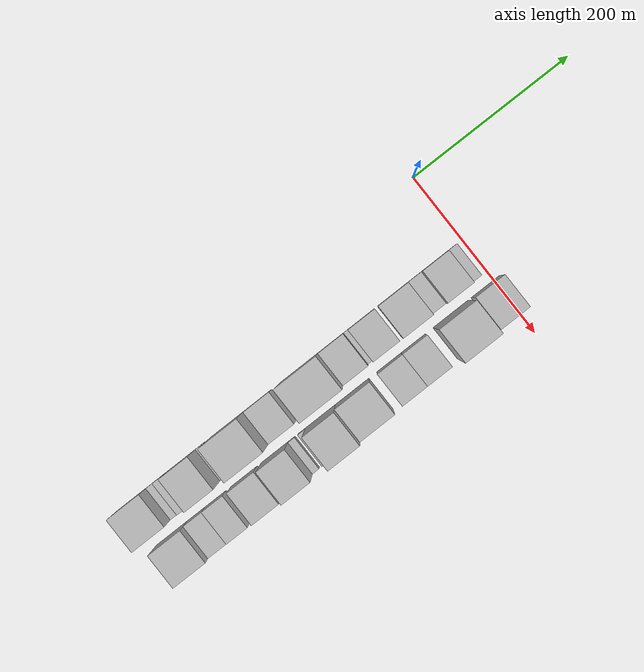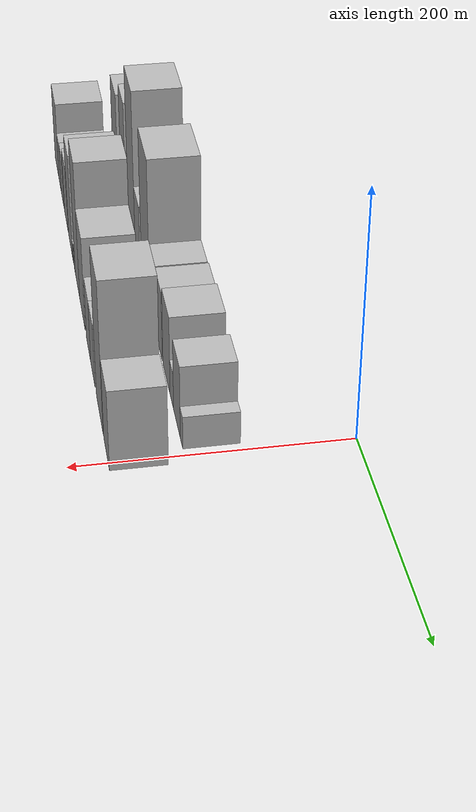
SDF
<sdf version="1.6">
 <world name="default">
  <model name="building_1">
   <static>1</static>
   <pose>100.0000 -423.9543 0 0.000000 0.000000 0.000000</pose>
   <link name="link">
    <pose>0 0 36.00 0 0 0</pose>
    <collision name="collision"><geometry><box><size>40.0000 40.0915 72.0000</size></box></geometry></collision>
    <visual name="visual">
     <cast_shadows>0</cast_shadows>
     <geometry><box><size>40.0000 40.0915 72.0000</size></box></geometry>
     <material>
      <script>
       <uri>model://HANNAS_wall/materials/scripts</uri>
       <uri>model://HANNAS_wall/materials/textures</uri>
       <name>vrc/HANNAS_wall</name>
      </script>
     </material>
    </visual>
   </link>
  </model>
  <model name="building_2">
   <static>1</static>
   <pose>100.0000 -398.9408 0 0.000000 0.000000 0.000000</pose>
   <link name="link">
    <pose>0 0 10.50 0 0 0</pose>
    <collision name="collision"><geometry><box><size>40.0000 9.9356 21.0000</size></box></geometry></collision>
    <visual name="visual">
     <cast_shadows>0</cast_shadows>
     <geometry><box><size>40.0000 9.9356 21.0000</size></box></geometry>
     <material>
      <script>
       <uri>model://HANNAS_wall/materials/scripts</uri>
       <uri>model://HANNAS_wall/materials/textures</uri>
       <name>vrc/HANNAS_wall</name>
      </script>
     </material>
    </visual>
   </link>
  </model>
  <model name="building_3">
   <static>1</static>
   <pose>100.0000 -385.1094 0 0.000000 0.000000 0.000000</pose>
   <link name="link">
    <pose>0 0 16.50 0 0 0</pose>
    <collision name="collision"><geometry><box><size>40.0000 17.7272 33.0000</size></box></geometry></collision>
    <visual name="visual">
     <cast_shadows>0</cast_shadows>
     <geometry><box><size>40.0000 17.7272 33.0000</size></box></geometry>
     <material>
      <script>
       <uri>model://HANNAS_wall/materials/scripts</uri>
       <uri>model://HANNAS_wall/materials/textures</uri>
       <name>vrc/HANNAS_wall</name>
      </script>
     </material>
    </visual>
   </link>
  </model>
  <model name="building_4">
   <static>1</static>
   <pose>100.0000 -358.5378 0 0.000000 0.000000 0.000000</pose>
   <link name="link">
    <pose>0 0 48.00 0 0 0</pose>
    <collision name="collision"><geometry><box><size>40.0000 35.4161 96.0000</size></box></geometry></collision>
    <visual name="visual">
     <cast_shadows>0</cast_shadows>
     <geometry><box><size>40.0000 35.4161 96.0000</size></box></geometry>
     <material>
      <script>
       <uri>model://HANNAS_wall/materials/scripts</uri>
       <uri>model://HANNAS_wall/materials/textures</uri>
       <name>vrc/HANNAS_wall</name>
      </script>
     </material>
    </visual>
   </link>
  </model>
  <model name="building_5">
   <static>1</static>
   <pose>100.0000 -335.9532 0 0.000000 0.000000 0.000000</pose>
   <link name="link">
    <pose>0 0 10.50 0 0 0</pose>
    <collision name="collision"><geometry><box><size>40.0000 9.7530 21.0000</size></box></geometry></collision>
    <visual name="visual">
     <cast_shadows>0</cast_shadows>
     <geometry><box><size>40.0000 9.7530 21.0000</size></box></geometry>
     <material>
      <script>
       <uri>model://HANNAS_wall/materials/scripts</uri>
       <uri>model://HANNAS_wall/materials/textures</uri>
       <name>vrc/HANNAS_wall</name>
      </script>
     </material>
    </visual>
   </link>
  </model>
  <model name="building_6">
   <static>1</static>
   <pose>100.0000 -300.1363 0 0.000000 0.000000 0.000000</pose>
   <link name="link">
    <pose>0 0 69.00 0 0 0</pose>
    <collision name="collision"><geometry><box><size>40.0000 45.8809 138.0000</size></box></geometry></collision>
    <visual name="visual">
     <cast_shadows>0</cast_shadows>
     <geometry><box><size>40.0000 45.8809 138.0000</size></box></geometry>
     <material>
      <script>
       <uri>model://HANNAS_wall/materials/scripts</uri>
       <uri>model://HANNAS_wall/materials/textures</uri>
       <name>vrc/HANNAS_wall</name>
      </script>
     </material>
    </visual>
   </link>
  </model>
  <model name="building_7">
   <static>1</static>
   <pose>100.0000 -261.0096 0 0.000000 0.000000 0.000000</pose>
   <link name="link">
    <pose>0 0 27.00 0 0 0</pose>
    <collision name="collision"><geometry><box><size>40.0000 32.3724 54.0000</size></box></geometry></collision>
    <visual name="visual">
     <cast_shadows>0</cast_shadows>
     <geometry><box><size>40.0000 32.3724 54.0000</size></box></geometry>
     <material>
      <script>
       <uri>model://HANNAS_wall/materials/scripts</uri>
       <uri>model://HANNAS_wall/materials/textures</uri>
       <name>vrc/HANNAS_wall</name>
      </script>
     </material>
    </visual>
   </link>
  </model>
  <model name="building_8">
   <static>1</static>
   <pose>100.0000 -209.3843 0 0.000000 0.000000 0.000000</pose>
   <link name="link">
    <pose>0 0 64.50 0 0 0</pose>
    <collision name="collision"><geometry><box><size>40.0000 50.8782 129.0000</size></box></geometry></collision>
    <visual name="visual">
     <cast_shadows>0</cast_shadows>
     <geometry><box><size>40.0000 50.8782 129.0000</size></box></geometry>
     <material>
      <script>
       <uri>model://HANNAS_wall/materials/scripts</uri>
       <uri>model://HANNAS_wall/materials/textures</uri>
       <name>vrc/HANNAS_wall</name>
      </script>
     </material>
    </visual>
   </link>
  </model>
  <model name="building_9">
   <static>1</static>
   <pose>100.0000 -168.1721 0 0.000000 0.000000 0.000000</pose>
   <link name="link">
    <pose>0 0 28.50 0 0 0</pose>
    <collision name="collision"><geometry><box><size>40.0000 31.5462 57.0000</size></box></geometry></collision>
    <visual name="visual">
     <cast_shadows>0</cast_shadows>
     <geometry><box><size>40.0000 31.5462 57.0000</size></box></geometry>
     <material>
      <script>
       <uri>model://HANNAS_wall/materials/scripts</uri>
       <uri>model://HANNAS_wall/materials/textures</uri>
       <name>vrc/HANNAS_wall</name>
      </script>
     </material>
    </visual>
   </link>
  </model>
  <model name="building_10">
   <static>1</static>
   <pose>100.0000 -149.3820 0 0.000000 0.000000 0.000000</pose>
   <link name="link">
    <pose>0 0 7.50 0 0 0</pose>
    <collision name="collision"><geometry><box><size>40.0000 6.0340 15.0000</size></box></geometry></collision>
    <visual name="visual">
     <cast_shadows>0</cast_shadows>
     <geometry><box><size>40.0000 6.0340 15.0000</size></box></geometry>
     <material>
      <script>
       <uri>model://HANNAS_wall/materials/scripts</uri>
       <uri>model://HANNAS_wall/materials/textures</uri>
       <name>vrc/HANNAS_wall</name>
      </script>
     </material>
    </visual>
   </link>
  </model>
  <model name="building_11">
   <static>1</static>
   <pose>100.0000 -129.6359 0 0.000000 0.000000 0.000000</pose>
   <link name="link">
    <pose>0 0 30.00 0 0 0</pose>
    <collision name="collision"><geometry><box><size>40.0000 33.4581 60.0000</size></box></geometry></collision>
    <visual name="visual">
     <cast_shadows>0</cast_shadows>
     <geometry><box><size>40.0000 33.4581 60.0000</size></box></geometry>
     <material>
      <script>
       <uri>model://HANNAS_wall/materials/scripts</uri>
       <uri>model://HANNAS_wall/materials/textures</uri>
       <name>vrc/HANNAS_wall</name>
      </script>
     </material>
    </visual>
   </link>
  </model>
  <model name="building_12">
   <static>1</static>
   <pose>100.0000 -90.0533 0 0.000000 0.000000 0.000000</pose>
   <link name="link">
    <pose>0 0 33.00 0 0 0</pose>
    <collision name="collision"><geometry><box><size>40.0000 37.7072 66.0000</size></box></geometry></collision>
    <visual name="visual">
     <cast_shadows>0</cast_shadows>
     <geometry><box><size>40.0000 37.7072 66.0000</size></box></geometry>
     <material>
      <script>
       <uri>model://HANNAS_wall/materials/scripts</uri>
       <uri>model://HANNAS_wall/materials/textures</uri>
       <name>vrc/HANNAS_wall</name>
      </script>
     </material>
    </visual>
   </link>
  </model>
  <model name="building_13">
   <static>1</static>
   <pose>100.0000 -62.3040 0 0.000000 0.000000 0.000000</pose>
   <link name="link">
    <pose>0 0 15.00 0 0 0</pose>
    <collision name="collision"><geometry><box><size>40.0000 17.7913 30.0000</size></box></geometry></collision>
    <visual name="visual">
     <cast_shadows>0</cast_shadows>
     <geometry><box><size>40.0000 17.7913 30.0000</size></box></geometry>
     <material>
      <script>
       <uri>model://HANNAS_wall/materials/scripts</uri>
       <uri>model://HANNAS_wall/materials/textures</uri>
       <name>vrc/HANNAS_wall</name>
      </script>
     </material>
    </visual>
   </link>
  </model>
  <model name="building_14">
   <static>1</static>
   <pose>100.0000 -36.8369 0 0.000000 0.000000 0.000000</pose>
   <link name="link">
    <pose>0 0 30.00 0 0 0</pose>
    <collision name="collision"><geometry><box><size>40.0000 33.1428 60.0000</size></box></geometry></collision>
    <visual name="visual">
     <cast_shadows>0</cast_shadows>
     <geometry><box><size>40.0000 33.1428 60.0000</size></box></geometry>
     <material>
      <script>
       <uri>model://HANNAS_wall/materials/scripts</uri>
       <uri>model://HANNAS_wall/materials/textures</uri>
       <name>vrc/HANNAS_wall</name>
      </script>
     </material>
    </visual>
   </link>
  </model>
  <model name="building_15">
   <static>1</static>
   <pose>100.0000 -14.0958 0 0.000000 0.000000 0.000000</pose>
   <link name="link">
    <pose>0 0 13.50 0 0 0</pose>
    <collision name="collision"><geometry><box><size>40.0000 12.3396 27.0000</size></box></geometry></collision>
    <visual name="visual">
     <cast_shadows>0</cast_shadows>
     <geometry><box><size>40.0000 12.3396 27.0000</size></box></geometry>
     <material>
      <script>
       <uri>model://HANNAS_wall/materials/scripts</uri>
       <uri>model://HANNAS_wall/materials/textures</uri>
       <name>vrc/HANNAS_wall</name>
      </script>
     </material>
    </visual>
   </link>
  </model>
  <model name="building_27">
   <static>1</static>
   <pose>152.0000 -414.0474 0 0.000000 0.000000 0.000000</pose>
   <link name="link">
    <pose>0 0 36.00 0 0 0</pose>
    <collision name="collision"><geometry><box><size>40.0000 39.9053 72.0000</size></box></geometry></collision>
    <visual name="visual">
     <cast_shadows>0</cast_shadows>
     <geometry><box><size>40.0000 39.9053 72.0000</size></box></geometry>
     <material>
      <script>
       <uri>model://HANNAS_wall/materials/scripts</uri>
       <uri>model://HANNAS_wall/materials/textures</uri>
       <name>vrc/HANNAS_wall</name>
      </script>
     </material>
    </visual>
   </link>
  </model>
  <model name="building_28">
   <static>1</static>
   <pose>152.0000 -382.4785 0 0.000000 0.000000 0.000000</pose>
   <link name="link">
    <pose>0 0 22.50 0 0 0</pose>
    <collision name="collision"><geometry><box><size>40.0000 23.2325 45.0000</size></box></geometry></collision>
    <visual name="visual">
     <cast_shadows>0</cast_shadows>
     <geometry><box><size>40.0000 23.2325 45.0000</size></box></geometry>
     <material>
      <script>
       <uri>model://HANNAS_wall/materials/scripts</uri>
       <uri>model://HANNAS_wall/materials/textures</uri>
       <name>vrc/HANNAS_wall</name>
      </script>
     </material>
    </visual>
   </link>
  </model>
  <model name="building_29">
   <static>1</static>
   <pose>152.0000 -357.6204 0 0.000000 0.000000 0.000000</pose>
   <link name="link">
    <pose>0 0 24.00 0 0 0</pose>
    <collision name="collision"><geometry><box><size>40.0000 26.4836 48.0000</size></box></geometry></collision>
    <visual name="visual">
     <cast_shadows>0</cast_shadows>
     <geometry><box><size>40.0000 26.4836 48.0000</size></box></geometry>
     <material>
      <script>
       <uri>model://HANNAS_wall/materials/scripts</uri>
       <uri>model://HANNAS_wall/materials/textures</uri>
       <name>vrc/HANNAS_wall</name>
      </script>
     </material>
    </visual>
   </link>
  </model>
  <model name="building_30">
   <static>1</static>
   <pose>152.0000 -321.4237 0 0.000000 0.000000 0.000000</pose>
   <link name="link">
    <pose>0 0 30.00 0 0 0</pose>
    <collision name="collision"><geometry><box><size>40.0000 33.9099 60.0000</size></box></geometry></collision>
    <visual name="visual">
     <cast_shadows>0</cast_shadows>
     <geometry><box><size>40.0000 33.9099 60.0000</size></box></geometry>
     <material>
      <script>
       <uri>model://HANNAS_wall/materials/scripts</uri>
       <uri>model://HANNAS_wall/materials/textures</uri>
       <name>vrc/HANNAS_wall</name>
      </script>
     </material>
    </visual>
   </link>
  </model>
  <model name="building_31">
   <static>1</static>
   <pose>152.0000 -281.8062 0 0.000000 0.000000 0.000000</pose>
   <link name="link">
    <pose>0 0 46.50 0 0 0</pose>
    <collision name="collision"><geometry><box><size>40.0000 35.3252 93.0000</size></box></geometry></collision>
    <visual name="visual">
     <cast_shadows>0</cast_shadows>
     <geometry><box><size>40.0000 35.3252 93.0000</size></box></geometry>
     <material>
      <script>
       <uri>model://HANNAS_wall/materials/scripts</uri>
       <uri>model://HANNAS_wall/materials/textures</uri>
       <name>vrc/HANNAS_wall</name>
      </script>
     </material>
    </visual>
   </link>
  </model>
  <model name="building_32">
   <static>1</static>
   <pose>152.0000 -259.8811 0 0.000000 0.000000 0.000000</pose>
   <link name="link">
    <pose>0 0 9.00 0 0 0</pose>
    <collision name="collision"><geometry><box><size>40.0000 8.5250 18.0000</size></box></geometry></collision>
    <visual name="visual">
     <cast_shadows>0</cast_shadows>
     <geometry><box><size>40.0000 8.5250 18.0000</size></box></geometry>
     <material>
      <script>
       <uri>model://HANNAS_wall/materials/scripts</uri>
       <uri>model://HANNAS_wall/materials/textures</uri>
       <name>vrc/HANNAS_wall</name>
      </script>
     </material>
    </visual>
   </link>
  </model>
  <model name="building_33">
   <static>1</static>
   <pose>152.0000 -246.9078 0 0.000000 0.000000 0.000000</pose>
   <link name="link">
    <pose>0 0 10.50 0 0 0</pose>
    <collision name="collision"><geometry><box><size>40.0000 9.4216 21.0000</size></box></geometry></collision>
    <visual name="visual">
     <cast_shadows>0</cast_shadows>
     <geometry><box><size>40.0000 9.4216 21.0000</size></box></geometry>
     <material>
      <script>
       <uri>model://HANNAS_wall/materials/scripts</uri>
       <uri>model://HANNAS_wall/materials/textures</uri>
       <name>vrc/HANNAS_wall</name>
      </script>
     </material>
    </visual>
   </link>
  </model>
  <model name="building_34">
   <static>1</static>
   <pose>152.0000 -222.9774 0 0.000000 0.000000 0.000000</pose>
   <link name="link">
    <pose>0 0 60.00 0 0 0</pose>
    <collision name="collision"><geometry><box><size>40.0000 38.4392 120.0000</size></box></geometry></collision>
    <visual name="visual">
     <cast_shadows>0</cast_shadows>
     <geometry><box><size>40.0000 38.4392 120.0000</size></box></geometry>
     <material>
      <script>
       <uri>model://HANNAS_wall/materials/scripts</uri>
       <uri>model://HANNAS_wall/materials/textures</uri>
       <name>vrc/HANNAS_wall</name>
      </script>
     </material>
    </visual>
   </link>
  </model>
  <model name="building_35">
   <static>1</static>
   <pose>152.0000 -182.2010 0 0.000000 0.000000 0.000000</pose>
   <link name="link">
    <pose>0 0 40.50 0 0 0</pose>
    <collision name="collision"><geometry><box><size>40.0000 43.1135 81.0000</size></box></geometry></collision>
    <visual name="visual">
     <cast_shadows>0</cast_shadows>
     <geometry><box><size>40.0000 43.1135 81.0000</size></box></geometry>
     <material>
      <script>
       <uri>model://HANNAS_wall/materials/scripts</uri>
       <uri>model://HANNAS_wall/materials/textures</uri>
       <name>vrc/HANNAS_wall</name>
      </script>
     </material>
    </visual>
   </link>
  </model>
  <model name="building_36">
   <static>1</static>
   <pose>152.0000 -134.8859 0 0.000000 0.000000 0.000000</pose>
   <link name="link">
    <pose>0 0 27.00 0 0 0</pose>
    <collision name="collision"><geometry><box><size>40.0000 31.5166 54.0000</size></box></geometry></collision>
    <visual name="visual">
     <cast_shadows>0</cast_shadows>
     <geometry><box><size>40.0000 31.5166 54.0000</size></box></geometry>
     <material>
      <script>
       <uri>model://HANNAS_wall/materials/scripts</uri>
       <uri>model://HANNAS_wall/materials/textures</uri>
       <name>vrc/HANNAS_wall</name>
      </script>
     </material>
    </visual>
   </link>
  </model>
  <model name="building_37">
   <static>1</static>
   <pose>152.0000 -103.5730 0 0.000000 0.000000 0.000000</pose>
   <link name="link">
    <pose>0 0 27.00 0 0 0</pose>
    <collision name="collision"><geometry><box><size>40.0000 31.1092 54.0000</size></box></geometry></collision>
    <visual name="visual">
     <cast_shadows>0</cast_shadows>
     <geometry><box><size>40.0000 31.1092 54.0000</size></box></geometry>
     <material>
      <script>
       <uri>model://HANNAS_wall/materials/scripts</uri>
       <uri>model://HANNAS_wall/materials/textures</uri>
       <name>vrc/HANNAS_wall</name>
      </script>
     </material>
    </visual>
   </link>
  </model>
  <model name="building_38">
   <static>1</static>
   <pose>152.0000 -55.4972 0 0.000000 0.000000 0.000000</pose>
   <link name="link">
    <pose>0 0 63.00 0 0 0</pose>
    <collision name="collision"><geometry><box><size>40.0000 45.0423 126.0000</size></box></geometry></collision>
    <visual name="visual">
     <cast_shadows>0</cast_shadows>
     <geometry><box><size>40.0000 45.0423 126.0000</size></box></geometry>
     <material>
      <script>
       <uri>model://HANNAS_wall/materials/scripts</uri>
       <uri>model://HANNAS_wall/materials/textures</uri>
       <name>vrc/HANNAS_wall</name>
      </script>
     </material>
    </visual>
   </link>
  </model>
  <model name="building_39">
   <static>1</static>
   <pose>152.0000 -10.7792 0 0.000000 0.000000 0.000000</pose>
   <link name="link">
    <pose>0 0 33.00 0 0 0</pose>
    <collision name="collision"><geometry><box><size>40.0000 36.3937 66.0000</size></box></geometry></collision>
    <visual name="visual">
     <cast_shadows>0</cast_shadows>
     <geometry><box><size>40.0000 36.3937 66.0000</size></box></geometry>
     <material>
      <script>
       <uri>model://HANNAS_wall/materials/scripts</uri>
       <uri>model://HANNAS_wall/materials/textures</uri>
       <name>vrc/HANNAS_wall</name>
      </script>
     </material>
    </visual>
   </link>
  </model>
 </world>
</sdf>
